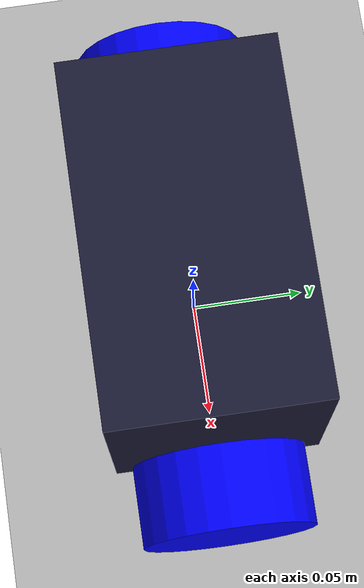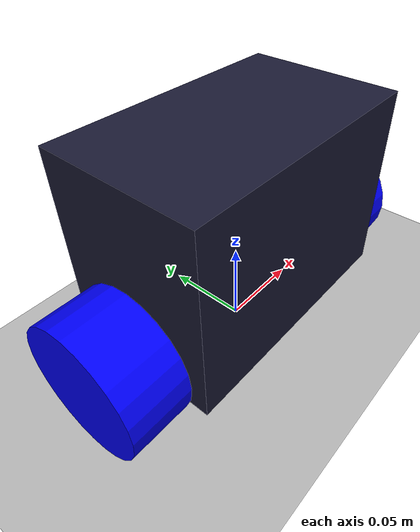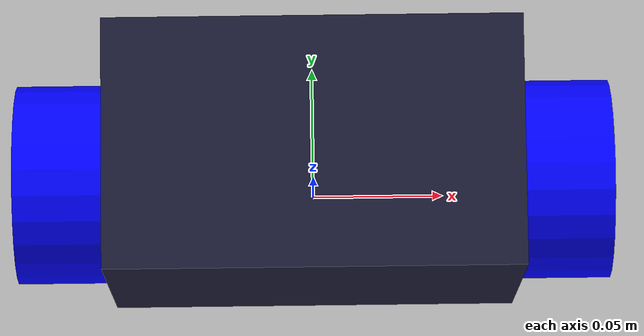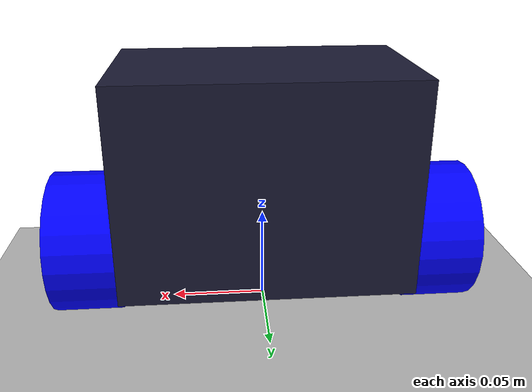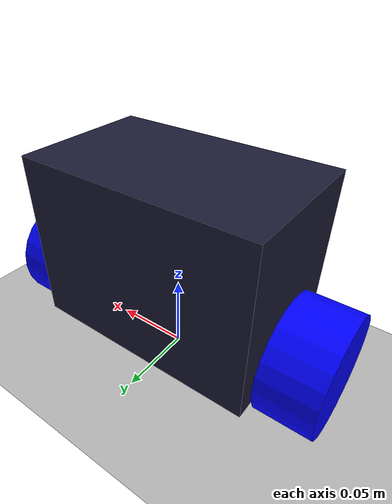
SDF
<?xml version="1.0" ?>
<sdf version="1.8">
  <world name="alfred_simulation">
    <physics name="1ms" type="ignored">
      <max_step_size>0.001</max_step_size>
      <real_time_factor>1.0</real_time_factor>
    </physics>
    <plugin
      filename="gz-sim-physics-system"
      name="gz::sim::systems::Physics">
    </plugin>
    <plugin
      filename="gz-sim-user-commands-system"
      name="gz::sim::systems::UserCommands">
    </plugin>
    <plugin
      filename="gz-sim-scene-broadcaster-system"
      name="gz::sim::systems::SceneBroadcaster">
    </plugin>
    <plugin filename="gz-sim-imu-system"
      name="gz::sim::systems::Imu">
    </plugin>
    <plugin
      filename="gz-sim-sensors-system"
      name="gz::sim::systems::Sensors">
      <render_engine>ogre2</render_engine>
    </plugin>

    <!-- Light -->
    <light type="directional" name="sun">
      <cast_shadows>true</cast_shadows>
      <pose>0 0 10 0 0 0</pose>
      <diffuse>0.8 0.8 0.8 1</diffuse>
      <specular>0.2 0.2 0.2 1</specular>
      <attenuation>
          <range>1000</range>
          <constant>0.9</constant>
          <linear>0.01</linear>
          <quadratic>0.001</quadratic>
      </attenuation>
      <direction>-0.5 0.1 -0.9</direction>
    </light>

    <gui fullscreen="0">
      <!-- 3D scene -->
      <plugin filename="MinimalScene" name="3D View">
        <gz-gui>
          <title>3D View</title>
          <property type="bool" key="showTitleBar">false</property>
          <property type="string" key="state">docked</property>
        </gz-gui>

        <engine>ogre2</engine>
        <scene>scene</scene>
        <ambient_light>0.4 0.4 0.4</ambient_light>
        <background_color>0.8 0.8 0.8</background_color>
        <camera_pose>-6 0 6 0 0.5 0</camera_pose>
        <camera_clip>
          <near>0.25</near>
          <far>25000</far>
        </camera_clip>
      </plugin>

      <!-- Plugins that add functionality to the scene -->
      <plugin filename="EntityContextMenuPlugin" name="Entity context menu">
        <gz-gui>
          <property key="state" type="string">floating</property>
          <property key="width" type="double">5</property>
          <property key="height" type="double">5</property>
          <property key="showTitleBar" type="bool">false</property>
        </gz-gui>
      </plugin>
      <plugin filename="GzSceneManager" name="Scene Manager">
        <gz-gui>
          <property key="resizable" type="bool">false</property>
          <property key="width" type="double">5</property>
          <property key="height" type="double">5</property>
          <property key="state" type="string">floating</property>
          <property key="showTitleBar" type="bool">false</property>
        </gz-gui>
      </plugin>
      <plugin filename="InteractiveViewControl" name="Interactive view control">
        <gz-gui>
          <property key="resizable" type="bool">false</property>
          <property key="width" type="double">5</property>
          <property key="height" type="double">5</property>
          <property key="state" type="string">floating</property>
          <property key="showTitleBar" type="bool">false</property>
        </gz-gui>
      </plugin>
      <plugin filename="CameraTracking" name="Camera Tracking">
        <gz-gui>
          <property key="resizable" type="bool">false</property>
          <property key="width" type="double">5</property>
          <property key="height" type="double">5</property>
          <property key="state" type="string">floating</property>
          <property key="showTitleBar" type="bool">false</property>
        </gz-gui>
      </plugin>
      <plugin filename="MarkerManager" name="Marker manager">
        <gz-gui>
          <property key="resizable" type="bool">false</property>
          <property key="width" type="double">5</property>
          <property key="height" type="double">5</property>
          <property key="state" type="string">floating</property>
          <property key="showTitleBar" type="bool">false</property>
        </gz-gui>
      </plugin>
      <plugin filename="SelectEntities" name="Select Entities">
        <gz-gui>
          <anchors target="Select entities">
            <line own="right" target="right"/>
            <line own="top" target="top"/>
          </anchors>
          <property key="resizable" type="bool">false</property>
          <property key="width" type="double">5</property>
          <property key="height" type="double">5</property>
          <property key="state" type="string">floating</property>
          <property key="showTitleBar" type="bool">false</property>
        </gz-gui>
      </plugin>
      <plugin filename="VisualizationCapabilities" name="Visualization Capabilities">
        <gz-gui>
          <property key="resizable" type="bool">false</property>
          <property key="width" type="double">5</property>
          <property key="height" type="double">5</property>
          <property key="state" type="string">floating</property>
          <property key="showTitleBar" type="bool">false</property>
        </gz-gui>
      </plugin>

      <plugin filename="Spawn" name="Spawn Entities">
        <gz-gui>
          <anchors target="Select entities">
            <line own="right" target="right"/>
            <line own="top" target="top"/>
          </anchors>
          <property key="resizable" type="bool">false</property>
          <property key="width" type="double">5</property>
          <property key="height" type="double">5</property>
          <property key="state" type="string">floating</property>
          <property key="showTitleBar" type="bool">false</property>
        </gz-gui>
      </plugin>

      <!-- World control -->
      <plugin filename="WorldControl" name="World control">
        <gz-gui>
          <title>World control</title>
          <property type="bool" key="showTitleBar">false</property>
          <property type="bool" key="resizable">false</property>
          <property type="double" key="height">72</property>
          <property type="double" key="width">121</property>
          <property type="double" key="z">1</property>

          <property type="string" key="state">floating</property>
          <anchors target="3D View">
            <line own="left" target="left"/>
            <line own="bottom" target="bottom"/>
          </anchors>
        </gz-gui>

        <play_pause>true</play_pause>
        <step>true</step>
        <start_paused>true</start_paused>
        <use_event>true</use_event>

      </plugin>

      <!-- World statistics -->
      <plugin filename="WorldStats" name="World stats">
        <gz-gui>
          <title>World stats</title>
          <property type="bool" key="showTitleBar">false</property>
          <property type="bool" key="resizable">false</property>
          <property type="double" key="height">110</property>
          <property type="double" key="width">290</property>
          <property type="double" key="z">1</property>

          <property type="string" key="state">floating</property>
          <anchors target="3D View">
            <line own="right" target="right"/>
            <line own="bottom" target="bottom"/>
          </anchors>
        </gz-gui>

        <sim_time>true</sim_time>
        <real_time>true</real_time>
        <real_time_factor>true</real_time_factor>
        <iterations>true</iterations>
      </plugin>

      <!-- Insert simple shapes -->
      <plugin filename="Shapes" name="Shapes">
        <gz-gui>
          <property key="resizable" type="bool">false</property>
          <property key="x" type="double">0</property>
          <property key="y" type="double">0</property>
          <property key="width" type="double">250</property>
          <property key="height" type="double">50</property>
          <property key="state" type="string">floating</property>
          <property key="showTitleBar" type="bool">false</property>
          <property key="cardBackground" type="string">#666666</property>
        </gz-gui>
      </plugin>

      <!-- Translate / rotate -->
      <plugin filename="TransformControl" name="Transform control">
        <gz-gui>
          <property key="resizable" type="bool">false</property>
          <property key="x" type="double">0</property>
          <property key="y" type="double">50</property>
          <property key="width" type="double">250</property>
          <property key="height" type="double">50</property>
          <property key="state" type="string">floating</property>
          <property key="showTitleBar" type="bool">false</property>
          <property key="cardBackground" type="string">#777777</property>
        </gz-gui>
      </plugin>

      <!-- Inspector -->
      <plugin filename="ComponentInspector" name="Component inspector">
        <gz-gui>
          <property type="string" key="state">docked_collapsed</property>
        </gz-gui>
      </plugin>

      <!-- Entity tree -->
      <plugin filename="EntityTree" name="Entity tree">
        <gz-gui>
          <property type="string" key="state">docked</property>
        </gz-gui>
      </plugin>

      <!-- KeyPublisher plugin-->
      <plugin filename="KeyPublisher" name="Key Publisher"/>
    </gui>

    <!-- Manual control -->

    <!-- Moving Left-->
    <plugin filename="gz-sim-triggered-publisher-system"
            name="gz::sim::systems::TriggeredPublisher">
        <input type="gz.msgs.Int32" topic="/keyboard/keypress">
            <match field="data">16777234</match>
        </input>
        <output type="gz.msgs.Twist" topic="/cmd_vel">
            linear: {x: 0.0}, angular: {z: 0.5}
        </output>
    </plugin>
    <!-- Moving Forward-->
    <plugin filename="gz-sim-triggered-publisher-system"
            name="gz::sim::systems::TriggeredPublisher">
        <input type="gz.msgs.Int32" topic="/keyboard/keypress">
            <match field="data">16777235</match>
        </input>
        <output type="gz.msgs.Twist" topic="/cmd_vel">
            linear: {x: 0.1}, angular: {z: 0.0}
        </output>
    </plugin>
    <!-- Moving Right-->
    <plugin filename="gz-sim-triggered-publisher-system"
            name="gz::sim::systems::TriggeredPublisher">
        <input type="gz.msgs.Int32" topic="/keyboard/keypress">
            <match field="data">16777236</match>
        </input>
        <output type="gz.msgs.Twist" topic="/cmd_vel">
            linear: {x: 0.0}, angular: {z: -0.5}
        </output>
    </plugin>
    <!-- Moving Backward-->
    <plugin filename="gz-sim-triggered-publisher-system"
            name="gz::sim::systems::TriggeredPublisher">
        <input type="gz.msgs.Int32" topic="/keyboard/keypress">
            <match field="data">16777237</match>
        </input>
        <output type="gz.msgs.Twist" topic="/cmd_vel">
            linear: {x: -0.1}, angular: {z: 0.0}
        </output>
    </plugin>

    <!-- Models -->
    <include>
      <name>Ground</name>
      <uri>ground.sdf</uri>
    </include>

    <include>
      <name>Alfred</name>
      <pose>0 0 0.0775 0 0 0</pose>
      <uri>alfred.sdf</uri>
    </include>

  </world>
</sdf>

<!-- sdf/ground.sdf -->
<sdf version="1.4">
  <model name="ground_plane">
    <static>true</static>
    <link name="link">
      <collision name="collision">
        <geometry>
          <plane>
            <normal>0 0 1</normal>
            <size>100 100</size>
          </plane>
        </geometry>
        <surface>
          <friction>
            <ode>
              <mu>100</mu>
              <mu2>50</mu2>
            </ode>
          </friction>
        </surface>
      </collision>
      <visual name="visual">
        <cast_shadows>false</cast_shadows>
        <geometry>
          <plane>
            <normal>0 0 1</normal>
            <size>100 100</size>
          </plane>
        </geometry>
        <material>
            <ambient>0.3 0.3 0.3 1</ambient>
            <diffuse>0.7 0.7 0.7 1</diffuse>
            <specular>0.01 0.01 0.01 1</specular>
        </material>
      </visual>
    </link>
  </model>
</sdf>

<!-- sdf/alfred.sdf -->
<sdf version="1.8">
  <model name="Alfred">
    <!-- Links definition -->

    <!-- Body -->
    <link name="body">
      <visual name='visual'>
        <geometry>
          <box>
            <size>0.15 0.09 0.11</size>
          </box>
        </geometry>
        <material>
          <ambient>0.1 0.1 0.1 1</ambient>
          <diffuse>0.1 0.1 0.2 1</diffuse>
          <specular>0 0 0 0</specular>
        </material>
      </visual>
      <collision name='collision'>
        <geometry>
          <box>
            <size>0.15 0.09 0.11</size>
          </box>
        </geometry>
      </collision>
      <inertial>
        <mass>0.72</mass>
        <inertia>
          <ixx>0.001212</ixx>
          <ixy>0.0</ixy>
          <ixz>0.0</ixz>
          <iyy>0.001836</iyy>
          <iyz>0.0</iyz>
          <izz>0.0020759999999999997</izz>
        </inertia>
      </inertial>
      <!-- Imu sensor -->
      <sensor name="imu_sensor" type="imu">
        <pose relative_to='body'>0 0 0.05 0 0 0</pose>
        <always_on>1</always_on>
        <update_rate>100</update_rate>
        <visualize>true</visualize>
        <topic>imu</topic>
      </sensor>
      <!-- Proximity sensor -->
      <sensor name="ultrasonic" type="gpu_lidar">
        <pose relative_to='body'>0 0.045 0.055 0 0 3.1416</pose>
        <always_on>1</always_on>
        <update_rate>1</update_rate>
        <visualize>true</visualize>
        <topic>ultrasonic</topic>
        <lidar>
          <scan>
              <horizontal>
                <samples>1</samples>
                <resolution>1</resolution>
                <min_angle>-0.075</min_angle>
                <max_angle>0.075</max_angle>
              </horizontal>
              <vertical>
                <samples>1</samples>
                <resolution>1</resolution>
                <min_angle>-0.075</min_angle>
                <max_angle>0.075</max_angle>
              </vertical>
          </scan>
          <range>
            <min>0.02</min>
            <max>4</max>
            <resolution>0.005</resolution>
          </range>
          <noise>
            <type>gaussian</type>
            <mean>0.0</mean>
            <stddev>0.01</stddev>
          </noise>
        </lidar>
      </sensor>
    </link>

    <!-- Right wheel -->
    <link name="right_wheel">
      <pose relative_to="body">-0.09375 0 -0.04 0 1.5707963267948966 0</pose>
      <visual name='visual'>
        <geometry>
          <cylinder>
            <length>0.035</length>
            <radius>0.0375</radius>
          </cylinder>
        </geometry>
        <material>
          <ambient>0.0 0.0 1.0 1</ambient>
          <diffuse>0.0 0.0 1.0 1</diffuse>
          <specular>0.0 0.0 1.0 1</specular>
        </material>
      </visual>
      <collision name='collision'>
        <geometry>
          <cylinder>
            <length>0.035</length>
            <radius>0.0375</radius>
          </cylinder>
        </geometry>
      </collision>
      <inertial>
        <mass>0.05</mass>
        <inertia>
          <ixx>2.2682291666666666e-05</ixx>
          <ixy>0.0</ixy>
          <ixz>0.0</ixz>
          <iyy>2.2682291666666666e-05</iyy>
          <iyz>0.0</iyz>
          <izz>3.515625e-05</izz>
        </inertia>
      </inertial>
    </link>

    <!-- Left wheel -->
    <link name="left_wheel">
      <pose relative_to="body">0.09375 0 -0.04 0 1.5707963267948966 0</pose>
      <visual name='visual'>
        <geometry>
          <cylinder>
            <length>0.035</length>
            <radius>0.0375</radius>
          </cylinder>
        </geometry>
        <material>
          <ambient>0.0 0.0 1.0 1</ambient>
          <diffuse>0.0 0.0 1.0 1</diffuse>
          <specular>0.0 0.0 1.0 1</specular>
        </material>
      </visual>
      <collision name='collision'>
        <geometry>
          <cylinder>
            <length>0.035</length>
            <radius>0.0375</radius>
          </cylinder>
        </geometry>
      </collision>
      <inertial>
        <mass>0.05</mass>
        <inertia>
          <ixx>2.2682291666666666e-05</ixx>
          <ixy>0.0</ixy>
          <ixz>0.0</ixz>
          <iyy>2.2682291666666666e-05</iyy>
          <iyz>0.0</iyz>
          <izz>3.515625e-05</izz>
        </inertia>
      </inertial>
    </link>

    <!-- Joints definition -->
    <joint name="body_to_right_wheel" type="revolute">
      <pose relative_to='right_wheel'/>
      <parent>body</parent>
      <child>right_wheel</child>
      <axis>
        <xyz expressed_in='body'>1 0 0</xyz>
        <limit>
          <lower>-1.79769e+308</lower>    <!--negative infinity-->
          <upper>1.79769e+308</upper>     <!--positive infinity-->
        </limit>
      </axis>
    </joint>
    <joint name="body_to_left_wheel" type="revolute">
      <pose relative_to='left_wheel'/>
      <parent>body</parent>
      <child>left_wheel</child>
      <axis>
        <xyz expressed_in='body'>1 0 0</xyz>
        <limit>
          <lower>-1.79769e+308</lower>    <!--negative infinity-->
          <upper>1.79769e+308</upper>     <!--positive infinity-->
        </limit>
      </axis>
    </joint>

    <!-- Diff drive plugin -->
    <plugin filename="gz-sim-diff-drive-system" name="gz::sim::systems::DiffDrive">
      <left_joint>body_to_left_wheel</left_joint>
      <right_joint>body_to_right_wheel</right_joint>
      <wheel_separation>0.185</wheel_separation>
      <wheel_radius>0.0375</wheel_radius>
      <odom_publish_frequency>100</odom_publish_frequency>
      <topic>cmd_vel</topic>
      <odom_topic>odometry</odom_topic>
    </plugin>
  </model>
</sdf>
